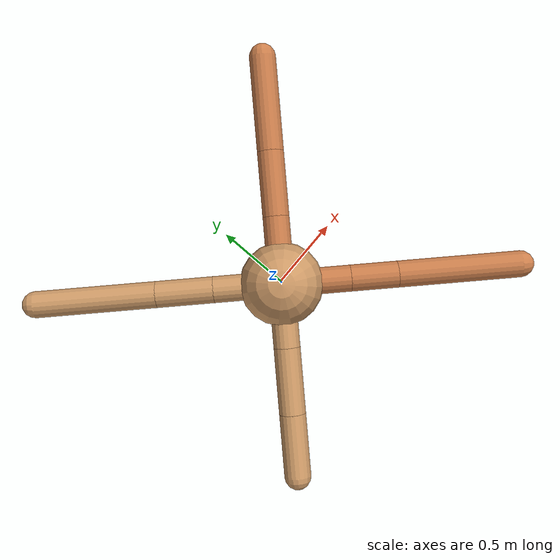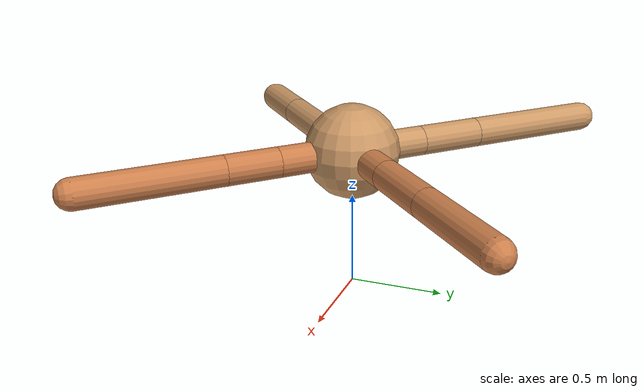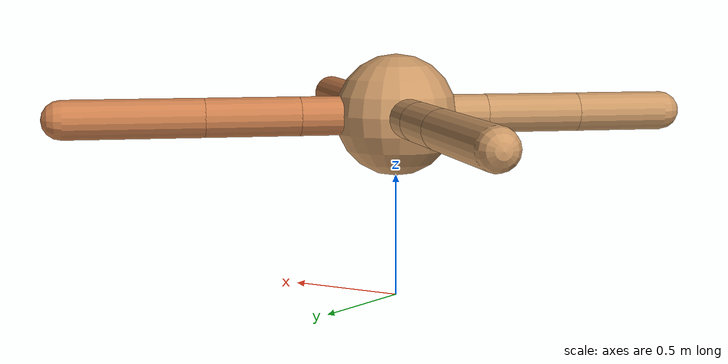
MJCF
<mujoco model="ant">
  <compiler angle="degree" coordinate="local" inertiafromgeom="true" />
  <option integrator="RK4" timestep="0.01" />
  <custom>
    <numeric data="0.0 0.0 0.55 1.0 0.0 0.0 0.0 0.0 1.0 0.0 -1.0 0.0 -1.0 0.0 1.0" name="init_qpos" />
  </custom>
  <default>
    <joint armature="1" damping="1" limited="true" />
    <geom conaffinity="0" condim="3" density="5.0" friction="1.5 0.1 0.1" margin="0.01" rgba="0.8 0.6 0.4 1" />
  </default>
  <worldbody>
    <body name="torso" pos="0 0 0.75">
      <geom name="torso_geom" pos="0 0 0" size="0.25" type="sphere" />

      <body name="front_left_leg" pos="0 0 0">
        <geom fromto="0.0 0.0 0.0 0.28339038166293584 0.28339038166293584 0.0" name="aux_1_geom" size="0.08" type="capsule" rgba=".8 .5 .3 1" />
        <body name="aux_1" pos="0.28339038166293584 0.28339038166293584 0.0">
          <joint axis="0 0 1" name="hip_1" pos="0.0 0.0 0.0" range="-40 40" type="hinge" />
          <geom fromto="0.0 0.0 0.0 0.273788823535245 0.273788823535245 0.0" name="left_leg_geom" size="0.08" type="capsule" rgba=".8 .5 .3 1" />
          <body pos="0.273788823535245 0.273788823535245 0.0" name="front_left_foot">
            <joint axis="-1 1 0" name="ankle_1" pos="0.0 0.0 0.0" range="30 100" type="hinge" />
            <geom fromto="0.0 0.0 0.0 0.39861594479056495 0.39861594479056495 0.0" name="left_ankle_geom" size="0.08" type="capsule" rgba=".8 .5 .3 1" />
          </body>
        </body>
      </body>
      <body name="front_right_leg" pos="0 0 0">
        <geom fromto="0.0 0.0 0.0 -0.2852539324188604 0.2852539324188604 0.0" name="aux_2_geom" size="0.08" type="capsule" />
        <body name="aux_2" pos="-0.2852539324188604 0.2852539324188604 0.0">
          <joint axis="0 0 1" name="hip_2" pos="0.0 0.0 0.0" range="-40 40" type="hinge" />
          <geom fromto="0.0 0.0 0.0 -0.24080509574092776 0.24080509574092776 0.0" name="right_leg_geom" size="0.08" type="capsule" />
          <body pos="-0.24080509574092776 0.24080509574092776 0.0" name="front_right_foot">
            <joint axis="1 1 0" name="ankle_2" pos="0.0 0.0 0.0" range="-100 -30" type="hinge" />
            <geom fromto="0.0 0.0 0.0 -0.5083018078452349 0.5083018078452349 0.0" name="right_ankle_geom" size="0.08" type="capsule" />
          </body>
        </body>
      </body>
      <body name="left_back_leg" pos="0 0 0">
        <geom fromto="0.0 0.0 0.0 -0.26704796321227514 -0.26704796321227514 0.0" name="aux_3_geom" size="0.08" type="capsule" />
        <body name="aux_3" pos="-0.26704796321227514 -0.26704796321227514 0.0">
          <joint axis="0 0 1" name="hip_3" pos="0.0 0.0 0.0" range="-40 40" type="hinge" />
          <geom fromto="0.0 0.0 0.0 -0.2791505344572804 -0.2791505344572804 0.0" name="back_leg_geom" size="0.08" type="capsule" />
          <body pos="-0.2791505344572804 -0.2791505344572804 0.0" name="left_back_foot">
            <joint axis="-1 1 0" name="ankle_3" pos="0.0 0.0 0.0" range="-100 -30" type="hinge" />
            <geom fromto="0.0 0.0 0.0 -0.26366768751050096 -0.26366768751050096 0.0" name="third_ankle_geom" size="0.08" type="capsule" />
          </body>
        </body>
      </body>
      <body name="right_back_leg" pos="0 0 0">
        <geom fromto="0.0 0.0 0.0 0.29045277828381305 -0.29045277828381305 0.0" name="aux_4_geom" size="0.08" type="capsule" rgba=".8 .5 .3 1" />
        <body name="aux_4" pos="0.29045277828381305 -0.29045277828381305 0.0">
          <joint axis="0 0 1" name="hip_4" pos="0.0 0.0 0.0" range="-40 40" type="hinge" />
          <geom fromto="0.0 0.0 0.0 0.1977553448840449 -0.1977553448840449 0.0" name="rightback_leg_geom" size="0.08" type="capsule" rgba=".8 .5 .3 1" />
          <body pos="0.1977553448840449 -0.1977553448840449 0.0" name="right_back_foot">
            <joint axis="1 1 0" name="ankle_4" pos="0.0 0.0 0.0" range="30 100" type="hinge" />
            <geom fromto="0.0 0.0 0.0 0.5155170502706691 -0.5155170502706691 0.0" name="fourth_ankle_geom" size="0.08" type="capsule" rgba=".8 .5 .3 1" />
          </body>
        </body>
      </body>
    </body>
  </worldbody>
  <actuator>
    <motor ctrllimited="true" ctrlrange="-1.0 1.0" joint="hip_4" gear="150" />
    <motor ctrllimited="true" ctrlrange="-1.0 1.0" joint="ankle_4" gear="150" />
    <motor ctrllimited="true" ctrlrange="-1.0 1.0" joint="hip_1" gear="150" />
    <motor ctrllimited="true" ctrlrange="-1.0 1.0" joint="ankle_1" gear="150" />
    <motor ctrllimited="true" ctrlrange="-1.0 1.0" joint="hip_2" gear="150" />
    <motor ctrllimited="true" ctrlrange="-1.0 1.0" joint="ankle_2" gear="150" />
    <motor ctrllimited="true" ctrlrange="-1.0 1.0" joint="hip_3" gear="150" />
    <motor ctrllimited="true" ctrlrange="-1.0 1.0" joint="ankle_3" gear="150" />
  </actuator>
</mujoco>
